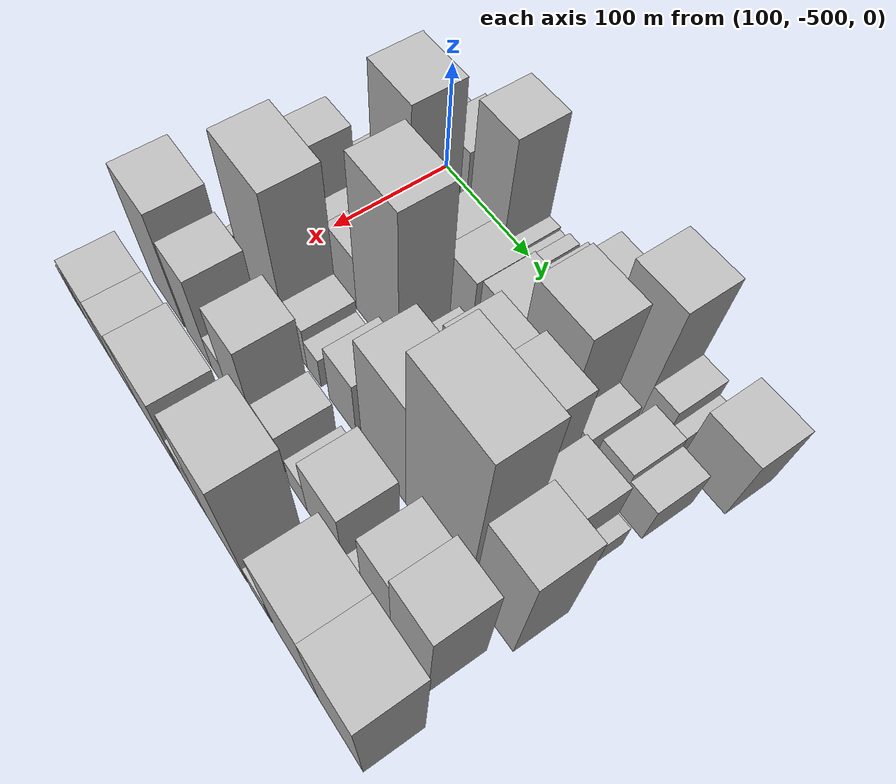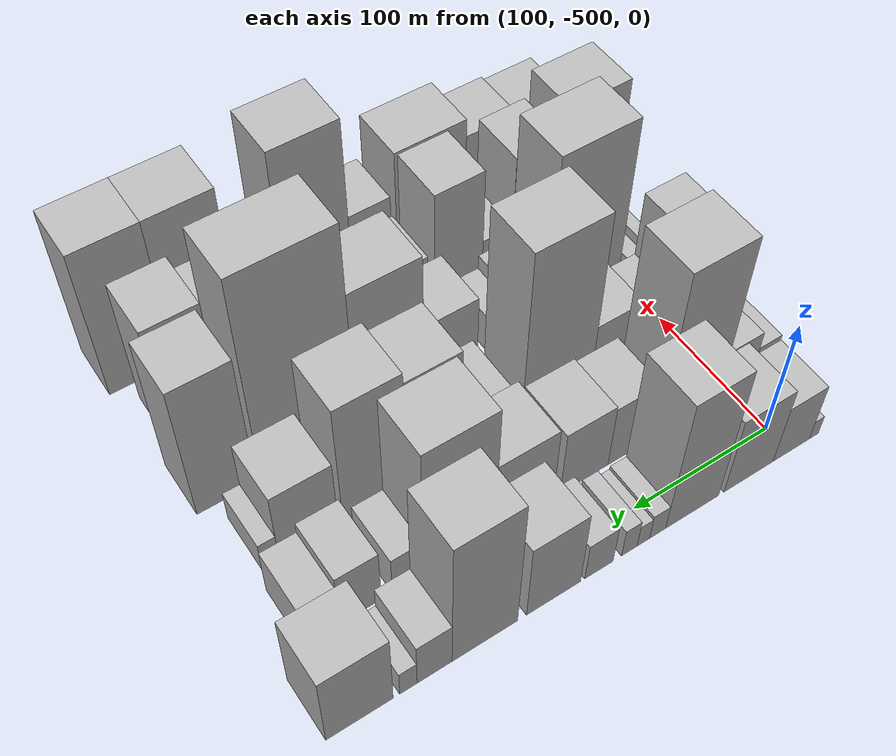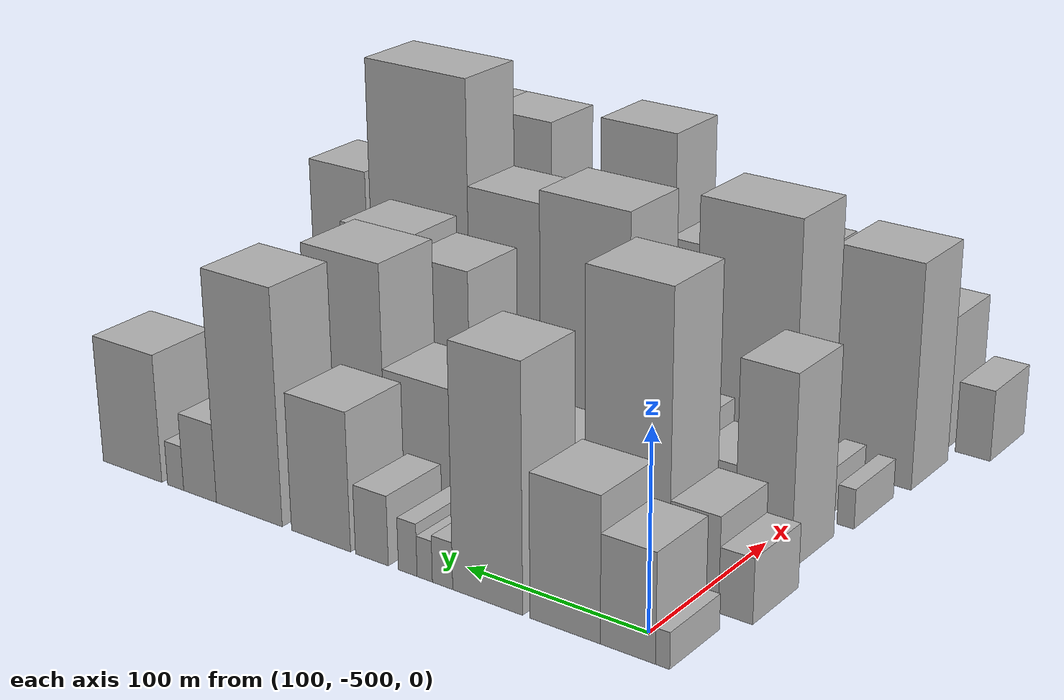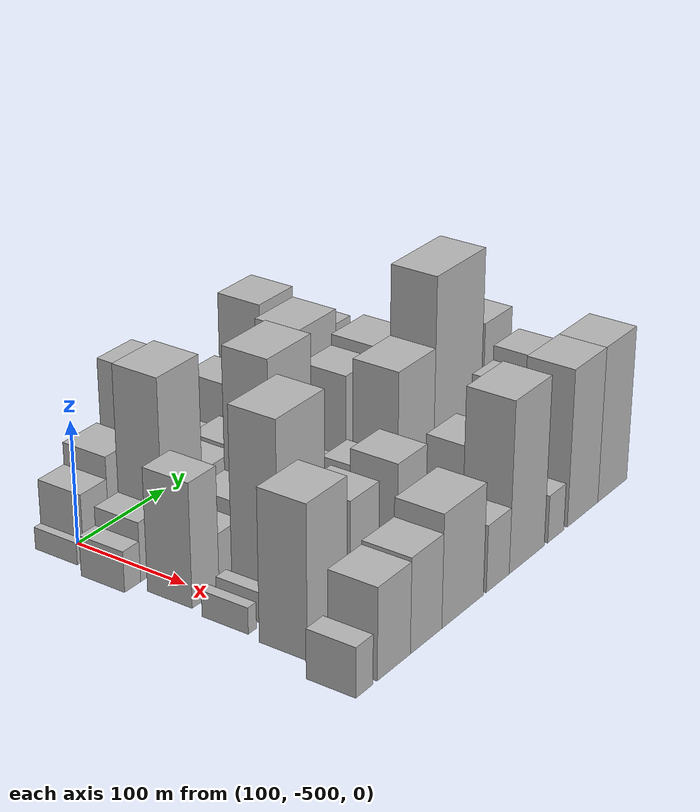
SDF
<sdf version="1.6">
 <world name="default">
  <model name="building_10">
   <static>1</static>
   <pose>100.0000 -520.1321 0 0.000000 0.000000 0.000000</pose>
   <link name="link">
    <pose>0 0 9.00 0 0 0</pose>
    <collision name="collision"><geometry><box><size>40.0000 7.2320 18.0000</size></box></geometry></collision>
    <visual name="visual">
     <cast_shadows>0</cast_shadows>
     <geometry><box><size>40.0000 7.2320 18.0000</size></box></geometry>
     <material>
      <script>
       <uri>model://HANNAS_wall/materials/scripts</uri>
       <uri>model://HANNAS_wall/materials/textures</uri>
       <name>vrc/HANNAS_wall</name>
      </script>
     </material>
    </visual>
   </link>
  </model>
  <model name="building_11">
   <static>1</static>
   <pose>100.0000 -502.2497 0 0.000000 0.000000 0.000000</pose>
   <link name="link">
    <pose>0 0 27.00 0 0 0</pose>
    <collision name="collision"><geometry><box><size>40.0000 28.5327 54.0000</size></box></geometry></collision>
    <visual name="visual">
     <cast_shadows>0</cast_shadows>
     <geometry><box><size>40.0000 28.5327 54.0000</size></box></geometry>
     <material>
      <script>
       <uri>model://HANNAS_wall/materials/scripts</uri>
       <uri>model://HANNAS_wall/materials/textures</uri>
       <name>vrc/HANNAS_wall</name>
      </script>
     </material>
    </visual>
   </link>
  </model>
  <model name="building_12">
   <static>1</static>
   <pose>100.0000 -469.1289 0 0.000000 0.000000 0.000000</pose>
   <link name="link">
    <pose>0 0 36.00 0 0 0</pose>
    <collision name="collision"><geometry><box><size>40.0000 37.7090 72.0000</size></box></geometry></collision>
    <visual name="visual">
     <cast_shadows>0</cast_shadows>
     <geometry><box><size>40.0000 37.7090 72.0000</size></box></geometry>
     <material>
      <script>
       <uri>model://HANNAS_wall/materials/scripts</uri>
       <uri>model://HANNAS_wall/materials/textures</uri>
       <name>vrc/HANNAS_wall</name>
      </script>
     </material>
    </visual>
   </link>
  </model>
  <model name="building_13">
   <static>1</static>
   <pose>100.0000 -426.5870 0 0.000000 0.000000 0.000000</pose>
   <link name="link">
    <pose>0 0 61.50 0 0 0</pose>
    <collision name="collision"><geometry><box><size>40.0000 39.3748 123.0000</size></box></geometry></collision>
    <visual name="visual">
     <cast_shadows>0</cast_shadows>
     <geometry><box><size>40.0000 39.3748 123.0000</size></box></geometry>
     <material>
      <script>
       <uri>model://HANNAS_wall/materials/scripts</uri>
       <uri>model://HANNAS_wall/materials/textures</uri>
       <name>vrc/HANNAS_wall</name>
      </script>
     </material>
    </visual>
   </link>
  </model>
  <model name="building_14">
   <static>1</static>
   <pose>100.0000 -401.0186 0 0.000000 0.000000 0.000000</pose>
   <link name="link">
    <pose>0 0 12.00 0 0 0</pose>
    <collision name="collision"><geometry><box><size>40.0000 11.7619 24.0000</size></box></geometry></collision>
    <visual name="visual">
     <cast_shadows>0</cast_shadows>
     <geometry><box><size>40.0000 11.7619 24.0000</size></box></geometry>
     <material>
      <script>
       <uri>model://HANNAS_wall/materials/scripts</uri>
       <uri>model://HANNAS_wall/materials/textures</uri>
       <name>vrc/HANNAS_wall</name>
      </script>
     </material>
    </visual>
   </link>
  </model>
  <model name="building_15">
   <static>1</static>
   <pose>100.0000 -390.6701 0 0.000000 0.000000 0.000000</pose>
   <link name="link">
    <pose>0 0 10.50 0 0 0</pose>
    <collision name="collision"><geometry><box><size>40.0000 8.9351 21.0000</size></box></geometry></collision>
    <visual name="visual">
     <cast_shadows>0</cast_shadows>
     <geometry><box><size>40.0000 8.9351 21.0000</size></box></geometry>
     <material>
      <script>
       <uri>model://HANNAS_wall/materials/scripts</uri>
       <uri>model://HANNAS_wall/materials/textures</uri>
       <name>vrc/HANNAS_wall</name>
      </script>
     </material>
    </visual>
   </link>
  </model>
  <model name="building_16">
   <static>1</static>
   <pose>100.0000 -380.6885 0 0.000000 0.000000 0.000000</pose>
   <link name="link">
    <pose>0 0 13.50 0 0 0</pose>
    <collision name="collision"><geometry><box><size>40.0000 11.0281 27.0000</size></box></geometry></collision>
    <visual name="visual">
     <cast_shadows>0</cast_shadows>
     <geometry><box><size>40.0000 11.0281 27.0000</size></box></geometry>
     <material>
      <script>
       <uri>model://HANNAS_wall/materials/scripts</uri>
       <uri>model://HANNAS_wall/materials/textures</uri>
       <name>vrc/HANNAS_wall</name>
      </script>
     </material>
    </visual>
   </link>
  </model>
  <model name="building_17">
   <static>1</static>
   <pose>100.0000 -359.2277 0 0.000000 0.000000 0.000000</pose>
   <link name="link">
    <pose>0 0 18.00 0 0 0</pose>
    <collision name="collision"><geometry><box><size>40.0000 19.8936 36.0000</size></box></geometry></collision>
    <visual name="visual">
     <cast_shadows>0</cast_shadows>
     <geometry><box><size>40.0000 19.8936 36.0000</size></box></geometry>
     <material>
      <script>
       <uri>model://HANNAS_wall/materials/scripts</uri>
       <uri>model://HANNAS_wall/materials/textures</uri>
       <name>vrc/HANNAS_wall</name>
      </script>
     </material>
    </visual>
   </link>
  </model>
  <model name="building_18">
   <static>1</static>
   <pose>100.0000 -327.8683 0 0.000000 0.000000 0.000000</pose>
   <link name="link">
    <pose>0 0 36.00 0 0 0</pose>
    <collision name="collision"><geometry><box><size>40.0000 36.8251 72.0000</size></box></geometry></collision>
    <visual name="visual">
     <cast_shadows>0</cast_shadows>
     <geometry><box><size>40.0000 36.8251 72.0000</size></box></geometry>
     <material>
      <script>
       <uri>model://HANNAS_wall/materials/scripts</uri>
       <uri>model://HANNAS_wall/materials/textures</uri>
       <name>vrc/HANNAS_wall</name>
      </script>
     </material>
    </visual>
   </link>
  </model>
  <model name="building_19">
   <static>1</static>
   <pose>100.0000 -281.9354 0 0.000000 0.000000 0.000000</pose>
   <link name="link">
    <pose>0 0 61.50 0 0 0</pose>
    <collision name="collision"><geometry><box><size>40.0000 43.0408 123.0000</size></box></geometry></collision>
    <visual name="visual">
     <cast_shadows>0</cast_shadows>
     <geometry><box><size>40.0000 43.0408 123.0000</size></box></geometry>
     <material>
      <script>
       <uri>model://HANNAS_wall/materials/scripts</uri>
       <uri>model://HANNAS_wall/materials/textures</uri>
       <name>vrc/HANNAS_wall</name>
      </script>
     </material>
    </visual>
   </link>
  </model>
  <model name="building_20">
   <static>1</static>
   <pose>100.0000 -249.3155 0 0.000000 0.000000 0.000000</pose>
   <link name="link">
    <pose>0 0 21.00 0 0 0</pose>
    <collision name="collision"><geometry><box><size>40.0000 22.1990 42.0000</size></box></geometry></collision>
    <visual name="visual">
     <cast_shadows>0</cast_shadows>
     <geometry><box><size>40.0000 22.1990 42.0000</size></box></geometry>
     <material>
      <script>
       <uri>model://HANNAS_wall/materials/scripts</uri>
       <uri>model://HANNAS_wall/materials/textures</uri>
       <name>vrc/HANNAS_wall</name>
      </script>
     </material>
    </visual>
   </link>
  </model>
  <model name="building_21">
   <static>1</static>
   <pose>100.0000 -232.7131 0 0.000000 0.000000 0.000000</pose>
   <link name="link">
    <pose>0 0 12.00 0 0 0</pose>
    <collision name="collision"><geometry><box><size>40.0000 11.0057 24.0000</size></box></geometry></collision>
    <visual name="visual">
     <cast_shadows>0</cast_shadows>
     <geometry><box><size>40.0000 11.0057 24.0000</size></box></geometry>
     <material>
      <script>
       <uri>model://HANNAS_wall/materials/scripts</uri>
       <uri>model://HANNAS_wall/materials/textures</uri>
       <name>vrc/HANNAS_wall</name>
      </script>
     </material>
    </visual>
   </link>
  </model>
  <model name="building_22">
   <static>1</static>
   <pose>100.0000 -202.5432 0 0.000000 0.000000 0.000000</pose>
   <link name="link">
    <pose>0 0 34.50 0 0 0</pose>
    <collision name="collision"><geometry><box><size>40.0000 41.3342 69.0000</size></box></geometry></collision>
    <visual name="visual">
     <cast_shadows>0</cast_shadows>
     <geometry><box><size>40.0000 41.3342 69.0000</size></box></geometry>
     <material>
      <script>
       <uri>model://HANNAS_wall/materials/scripts</uri>
       <uri>model://HANNAS_wall/materials/textures</uri>
       <name>vrc/HANNAS_wall</name>
      </script>
     </material>
    </visual>
   </link>
  </model>
  <model name="building_62">
   <static>1</static>
   <pose>152.0000 -524.5875 0 0.000000 0.000000 0.000000</pose>
   <link name="link">
    <pose>0 0 16.50 0 0 0</pose>
    <collision name="collision"><geometry><box><size>40.0000 17.6715 33.0000</size></box></geometry></collision>
    <visual name="visual">
     <cast_shadows>0</cast_shadows>
     <geometry><box><size>40.0000 17.6715 33.0000</size></box></geometry>
     <material>
      <script>
       <uri>model://HANNAS_wall/materials/scripts</uri>
       <uri>model://HANNAS_wall/materials/textures</uri>
       <name>vrc/HANNAS_wall</name>
      </script>
     </material>
    </visual>
   </link>
  </model>
  <model name="building_63">
   <static>1</static>
   <pose>152.0000 -502.6047 0 0.000000 0.000000 0.000000</pose>
   <link name="link">
    <pose>0 0 24.00 0 0 0</pose>
    <collision name="collision"><geometry><box><size>40.0000 26.2942 48.0000</size></box></geometry></collision>
    <visual name="visual">
     <cast_shadows>0</cast_shadows>
     <geometry><box><size>40.0000 26.2942 48.0000</size></box></geometry>
     <material>
      <script>
       <uri>model://HANNAS_wall/materials/scripts</uri>
       <uri>model://HANNAS_wall/materials/textures</uri>
       <name>vrc/HANNAS_wall</name>
      </script>
     </material>
    </visual>
   </link>
  </model>
  <model name="building_64">
   <static>1</static>
   <pose>152.0000 -466.3434 0 0.000000 0.000000 0.000000</pose>
   <link name="link">
    <pose>0 0 75.00 0 0 0</pose>
    <collision name="collision"><geometry><box><size>40.0000 46.2285 150.0000</size></box></geometry></collision>
    <visual name="visual">
     <cast_shadows>0</cast_shadows>
     <geometry><box><size>40.0000 46.2285 150.0000</size></box></geometry>
     <material>
      <script>
       <uri>model://HANNAS_wall/materials/scripts</uri>
       <uri>model://HANNAS_wall/materials/textures</uri>
       <name>vrc/HANNAS_wall</name>
      </script>
     </material>
    </visual>
   </link>
  </model>
  <model name="building_65">
   <static>1</static>
   <pose>152.0000 -421.4302 0 0.000000 0.000000 0.000000</pose>
   <link name="link">
    <pose>0 0 28.50 0 0 0</pose>
    <collision name="collision"><geometry><box><size>40.0000 31.5978 57.0000</size></box></geometry></collision>
    <visual name="visual">
     <cast_shadows>0</cast_shadows>
     <geometry><box><size>40.0000 31.5978 57.0000</size></box></geometry>
     <material>
      <script>
       <uri>model://HANNAS_wall/materials/scripts</uri>
       <uri>model://HANNAS_wall/materials/textures</uri>
       <name>vrc/HANNAS_wall</name>
      </script>
     </material>
    </visual>
   </link>
  </model>
  <model name="building_66">
   <static>1</static>
   <pose>152.0000 -388.2753 0 0.000000 0.000000 0.000000</pose>
   <link name="link">
    <pose>0 0 30.00 0 0 0</pose>
    <collision name="collision"><geometry><box><size>40.0000 34.7120 60.0000</size></box></geometry></collision>
    <visual name="visual">
     <cast_shadows>0</cast_shadows>
     <geometry><box><size>40.0000 34.7120 60.0000</size></box></geometry>
     <material>
      <script>
       <uri>model://HANNAS_wall/materials/scripts</uri>
       <uri>model://HANNAS_wall/materials/textures</uri>
       <name>vrc/HANNAS_wall</name>
      </script>
     </material>
    </visual>
   </link>
  </model>
  <model name="building_67">
   <static>1</static>
   <pose>152.0000 -345.3251 0 0.000000 0.000000 0.000000</pose>
   <link name="link">
    <pose>0 0 34.50 0 0 0</pose>
    <collision name="collision"><geometry><box><size>40.0000 41.1885 69.0000</size></box></geometry></collision>
    <visual name="visual">
     <cast_shadows>0</cast_shadows>
     <geometry><box><size>40.0000 41.1885 69.0000</size></box></geometry>
     <material>
      <script>
       <uri>model://HANNAS_wall/materials/scripts</uri>
       <uri>model://HANNAS_wall/materials/textures</uri>
       <name>vrc/HANNAS_wall</name>
      </script>
     </material>
    </visual>
   </link>
  </model>
  <model name="building_68">
   <static>1</static>
   <pose>152.0000 -300.4010 0 0.000000 0.000000 0.000000</pose>
   <link name="link">
    <pose>0 0 61.50 0 0 0</pose>
    <collision name="collision"><geometry><box><size>40.0000 48.6596 123.0000</size></box></geometry></collision>
    <visual name="visual">
     <cast_shadows>0</cast_shadows>
     <geometry><box><size>40.0000 48.6596 123.0000</size></box></geometry>
     <material>
      <script>
       <uri>model://HANNAS_wall/materials/scripts</uri>
       <uri>model://HANNAS_wall/materials/textures</uri>
       <name>vrc/HANNAS_wall</name>
      </script>
     </material>
    </visual>
   </link>
  </model>
  <model name="building_69">
   <static>1</static>
   <pose>152.0000 -265.8453 0 0.000000 0.000000 0.000000</pose>
   <link name="link">
    <pose>0 0 18.00 0 0 0</pose>
    <collision name="collision"><geometry><box><size>40.0000 20.4519 36.0000</size></box></geometry></collision>
    <visual name="visual">
     <cast_shadows>0</cast_shadows>
     <geometry><box><size>40.0000 20.4519 36.0000</size></box></geometry>
     <material>
      <script>
       <uri>model://HANNAS_wall/materials/scripts</uri>
       <uri>model://HANNAS_wall/materials/textures</uri>
       <name>vrc/HANNAS_wall</name>
      </script>
     </material>
    </visual>
   </link>
  </model>
  <model name="building_70">
   <static>1</static>
   <pose>152.0000 -235.1128 0 0.000000 0.000000 0.000000</pose>
   <link name="link">
    <pose>0 0 25.50 0 0 0</pose>
    <collision name="collision"><geometry><box><size>40.0000 27.0131 51.0000</size></box></geometry></collision>
    <visual name="visual">
     <cast_shadows>0</cast_shadows>
     <geometry><box><size>40.0000 27.0131 51.0000</size></box></geometry>
     <material>
      <script>
       <uri>model://HANNAS_wall/materials/scripts</uri>
       <uri>model://HANNAS_wall/materials/textures</uri>
       <name>vrc/HANNAS_wall</name>
      </script>
     </material>
    </visual>
   </link>
  </model>
  <model name="building_71">
   <static>1</static>
   <pose>152.0000 -210.0470 0 0.000000 0.000000 0.000000</pose>
   <link name="link">
    <pose>0 0 21.00 0 0 0</pose>
    <collision name="collision"><geometry><box><size>40.0000 23.1183 42.0000</size></box></geometry></collision>
    <visual name="visual">
     <cast_shadows>0</cast_shadows>
     <geometry><box><size>40.0000 23.1183 42.0000</size></box></geometry>
     <material>
      <script>
       <uri>model://HANNAS_wall/materials/scripts</uri>
       <uri>model://HANNAS_wall/materials/textures</uri>
       <name>vrc/HANNAS_wall</name>
      </script>
     </material>
    </visual>
   </link>
  </model>
  <model name="building_116">
   <static>1</static>
   <pose>204.0000 -507.4795 0 0.000000 0.000000 0.000000</pose>
   <link name="link">
    <pose>0 0 49.50 0 0 0</pose>
    <collision name="collision"><geometry><box><size>40.0000 30.4608 99.0000</size></box></geometry></collision>
    <visual name="visual">
     <cast_shadows>0</cast_shadows>
     <geometry><box><size>40.0000 30.4608 99.0000</size></box></geometry>
     <material>
      <script>
       <uri>model://HANNAS_wall/materials/scripts</uri>
       <uri>model://HANNAS_wall/materials/textures</uri>
       <name>vrc/HANNAS_wall</name>
      </script>
     </material>
    </visual>
   </link>
  </model>
  <model name="building_117">
   <static>1</static>
   <pose>204.0000 -479.2169 0 0.000000 0.000000 0.000000</pose>
   <link name="link">
    <pose>0 0 22.50 0 0 0</pose>
    <collision name="collision"><geometry><box><size>40.0000 26.0646 45.0000</size></box></geometry></collision>
    <visual name="visual">
     <cast_shadows>0</cast_shadows>
     <geometry><box><size>40.0000 26.0646 45.0000</size></box></geometry>
     <material>
      <script>
       <uri>model://HANNAS_wall/materials/scripts</uri>
       <uri>model://HANNAS_wall/materials/textures</uri>
       <name>vrc/HANNAS_wall</name>
      </script>
     </material>
    </visual>
   </link>
  </model>
  <model name="building_118">
   <static>1</static>
   <pose>204.0000 -449.1512 0 0.000000 0.000000 0.000000</pose>
   <link name="link">
    <pose>0 0 28.50 0 0 0</pose>
    <collision name="collision"><geometry><box><size>40.0000 34.0669 57.0000</size></box></geometry></collision>
    <visual name="visual">
     <cast_shadows>0</cast_shadows>
     <geometry><box><size>40.0000 34.0669 57.0000</size></box></geometry>
     <material>
      <script>
       <uri>model://HANNAS_wall/materials/scripts</uri>
       <uri>model://HANNAS_wall/materials/textures</uri>
       <name>vrc/HANNAS_wall</name>
      </script>
     </material>
    </visual>
   </link>
  </model>
  <model name="building_119">
   <static>1</static>
   <pose>204.0000 -406.2856 0 0.000000 0.000000 0.000000</pose>
   <link name="link">
    <pose>0 0 78.00 0 0 0</pose>
    <collision name="collision"><geometry><box><size>40.0000 51.6643 156.0000</size></box></geometry></collision>
    <visual name="visual">
     <cast_shadows>0</cast_shadows>
     <geometry><box><size>40.0000 51.6643 156.0000</size></box></geometry>
     <material>
      <script>
       <uri>model://HANNAS_wall/materials/scripts</uri>
       <uri>model://HANNAS_wall/materials/textures</uri>
       <name>vrc/HANNAS_wall</name>
      </script>
     </material>
    </visual>
   </link>
  </model>
  <model name="building_120">
   <static>1</static>
   <pose>204.0000 -359.1246 0 0.000000 0.000000 0.000000</pose>
   <link name="link">
    <pose>0 0 22.50 0 0 0</pose>
    <collision name="collision"><geometry><box><size>40.0000 24.6578 45.0000</size></box></geometry></collision>
    <visual name="visual">
     <cast_shadows>0</cast_shadows>
     <geometry><box><size>40.0000 24.6578 45.0000</size></box></geometry>
     <material>
      <script>
       <uri>model://HANNAS_wall/materials/scripts</uri>
       <uri>model://HANNAS_wall/materials/textures</uri>
       <name>vrc/HANNAS_wall</name>
      </script>
     </material>
    </visual>
   </link>
  </model>
  <model name="building_121">
   <static>1</static>
   <pose>204.0000 -317.7752 0 0.000000 0.000000 0.000000</pose>
   <link name="link">
    <pose>0 0 52.50 0 0 0</pose>
    <collision name="collision"><geometry><box><size>40.0000 38.0410 105.0000</size></box></geometry></collision>
    <visual name="visual">
     <cast_shadows>0</cast_shadows>
     <geometry><box><size>40.0000 38.0410 105.0000</size></box></geometry>
     <material>
      <script>
       <uri>model://HANNAS_wall/materials/scripts</uri>
       <uri>model://HANNAS_wall/materials/textures</uri>
       <name>vrc/HANNAS_wall</name>
      </script>
     </material>
    </visual>
   </link>
  </model>
  <model name="building_122">
   <static>1</static>
   <pose>204.0000 -277.1395 0 0.000000 0.000000 0.000000</pose>
   <link name="link">
    <pose>0 0 57.00 0 0 0</pose>
    <collision name="collision"><geometry><box><size>40.0000 43.2304 114.0000</size></box></geometry></collision>
    <visual name="visual">
     <cast_shadows>0</cast_shadows>
     <geometry><box><size>40.0000 43.2304 114.0000</size></box></geometry>
     <material>
      <script>
       <uri>model://HANNAS_wall/materials/scripts</uri>
       <uri>model://HANNAS_wall/materials/textures</uri>
       <name>vrc/HANNAS_wall</name>
      </script>
     </material>
    </visual>
   </link>
  </model>
  <model name="building_123">
   <static>1</static>
   <pose>204.0000 -233.1092 0 0.000000 0.000000 0.000000</pose>
   <link name="link">
    <pose>0 0 33.00 0 0 0</pose>
    <collision name="collision"><geometry><box><size>40.0000 38.8304 66.0000</size></box></geometry></collision>
    <visual name="visual">
     <cast_shadows>0</cast_shadows>
     <geometry><box><size>40.0000 38.8304 66.0000</size></box></geometry>
     <material>
      <script>
       <uri>model://HANNAS_wall/materials/scripts</uri>
       <uri>model://HANNAS_wall/materials/textures</uri>
       <name>vrc/HANNAS_wall</name>
      </script>
     </material>
    </visual>
   </link>
  </model>
  <model name="building_124">
   <static>1</static>
   <pose>204.0000 -208.1800 0 0.000000 0.000000 0.000000</pose>
   <link name="link">
    <pose>0 0 13.50 0 0 0</pose>
    <collision name="collision"><geometry><box><size>40.0000 11.0280 27.0000</size></box></geometry></collision>
    <visual name="visual">
     <cast_shadows>0</cast_shadows>
     <geometry><box><size>40.0000 11.0280 27.0000</size></box></geometry>
     <material>
      <script>
       <uri>model://HANNAS_wall/materials/scripts</uri>
       <uri>model://HANNAS_wall/materials/textures</uri>
       <name>vrc/HANNAS_wall</name>
      </script>
     </material>
    </visual>
   </link>
  </model>
  <model name="building_162">
   <static>1</static>
   <pose>256.0000 -522.3831 0 0.000000 0.000000 0.000000</pose>
   <link name="link">
    <pose>0 0 10.50 0 0 0</pose>
    <collision name="collision"><geometry><box><size>40.0000 9.2890 21.0000</size></box></geometry></collision>
    <visual name="visual">
     <cast_shadows>0</cast_shadows>
     <geometry><box><size>40.0000 9.2890 21.0000</size></box></geometry>
     <material>
      <script>
       <uri>model://HANNAS_wall/materials/scripts</uri>
       <uri>model://HANNAS_wall/materials/textures</uri>
       <name>vrc/HANNAS_wall</name>
      </script>
     </material>
    </visual>
   </link>
  </model>
  <model name="building_163">
   <static>1</static>
   <pose>256.0000 -504.7860 0 0.000000 0.000000 0.000000</pose>
   <link name="link">
    <pose>0 0 12.00 0 0 0</pose>
    <collision name="collision"><geometry><box><size>40.0000 11.9053 24.0000</size></box></geometry></collision>
    <visual name="visual">
     <cast_shadows>0</cast_shadows>
     <geometry><box><size>40.0000 11.9053 24.0000</size></box></geometry>
     <material>
      <script>
       <uri>model://HANNAS_wall/materials/scripts</uri>
       <uri>model://HANNAS_wall/materials/textures</uri>
       <name>vrc/HANNAS_wall</name>
      </script>
     </material>
    </visual>
   </link>
  </model>
  <model name="building_164">
   <static>1</static>
   <pose>256.0000 -464.8384 0 0.000000 0.000000 0.000000</pose>
   <link name="link">
    <pose>0 0 75.00 0 0 0</pose>
    <collision name="collision"><geometry><box><size>40.0000 55.9898 150.0000</size></box></geometry></collision>
    <visual name="visual">
     <cast_shadows>0</cast_shadows>
     <geometry><box><size>40.0000 55.9898 150.0000</size></box></geometry>
     <material>
      <script>
       <uri>model://HANNAS_wall/materials/scripts</uri>
       <uri>model://HANNAS_wall/materials/textures</uri>
       <name>vrc/HANNAS_wall</name>
      </script>
     </material>
    </visual>
   </link>
  </model>
  <model name="building_165">
   <static>1</static>
   <pose>256.0000 -424.0616 0 0.000000 0.000000 0.000000</pose>
   <link name="link">
    <pose>0 0 22.50 0 0 0</pose>
    <collision name="collision"><geometry><box><size>40.0000 25.5638 45.0000</size></box></geometry></collision>
    <visual name="visual">
     <cast_shadows>0</cast_shadows>
     <geometry><box><size>40.0000 25.5638 45.0000</size></box></geometry>
     <material>
      <script>
       <uri>model://HANNAS_wall/materials/scripts</uri>
       <uri>model://HANNAS_wall/materials/textures</uri>
       <name>vrc/HANNAS_wall</name>
      </script>
     </material>
    </visual>
   </link>
  </model>
  <model name="building_166">
   <static>1</static>
   <pose>256.0000 -402.5750 0 0.000000 0.000000 0.000000</pose>
   <link name="link">
    <pose>0 0 16.50 0 0 0</pose>
    <collision name="collision"><geometry><box><size>40.0000 17.4094 33.0000</size></box></geometry></collision>
    <visual name="visual">
     <cast_shadows>0</cast_shadows>
     <geometry><box><size>40.0000 17.4094 33.0000</size></box></geometry>
     <material>
      <script>
       <uri>model://HANNAS_wall/materials/scripts</uri>
       <uri>model://HANNAS_wall/materials/textures</uri>
       <name>vrc/HANNAS_wall</name>
      </script>
     </material>
    </visual>
   </link>
  </model>
  <model name="building_167">
   <static>1</static>
   <pose>256.0000 -368.0214 0 0.000000 0.000000 0.000000</pose>
   <link name="link">
    <pose>0 0 31.50 0 0 0</pose>
    <collision name="collision"><geometry><box><size>40.0000 31.6977 63.0000</size></box></geometry></collision>
    <visual name="visual">
     <cast_shadows>0</cast_shadows>
     <geometry><box><size>40.0000 31.6977 63.0000</size></box></geometry>
     <material>
      <script>
       <uri>model://HANNAS_wall/materials/scripts</uri>
       <uri>model://HANNAS_wall/materials/textures</uri>
       <name>vrc/HANNAS_wall</name>
      </script>
     </material>
    </visual>
   </link>
  </model>
  <model name="building_168">
   <static>1</static>
   <pose>256.0000 -320.9266 0 0.000000 0.000000 0.000000</pose>
   <link name="link">
    <pose>0 0 63.00 0 0 0</pose>
    <collision name="collision"><geometry><box><size>40.0000 48.4920 126.0000</size></box></geometry></collision>
    <visual name="visual">
     <cast_shadows>0</cast_shadows>
     <geometry><box><size>40.0000 48.4920 126.0000</size></box></geometry>
     <material>
      <script>
       <uri>model://HANNAS_wall/materials/scripts</uri>
       <uri>model://HANNAS_wall/materials/textures</uri>
       <name>vrc/HANNAS_wall</name>
      </script>
     </material>
    </visual>
   </link>
  </model>
  <model name="building_169">
   <static>1</static>
   <pose>256.0000 -263.8178 0 0.000000 0.000000 0.000000</pose>
   <link name="link">
    <pose>0 0 91.50 0 0 0</pose>
    <collision name="collision"><geometry><box><size>40.0000 65.7257 183.0000</size></box></geometry></collision>
    <visual name="visual">
     <cast_shadows>0</cast_shadows>
     <geometry><box><size>40.0000 65.7257 183.0000</size></box></geometry>
     <material>
      <script>
       <uri>model://HANNAS_wall/materials/scripts</uri>
       <uri>model://HANNAS_wall/materials/textures</uri>
       <name>vrc/HANNAS_wall</name>
      </script>
     </material>
    </visual>
   </link>
  </model>
  <model name="building_170">
   <static>1</static>
   <pose>256.0000 -208.4702 0 0.000000 0.000000 0.000000</pose>
   <link name="link">
    <pose>0 0 60.00 0 0 0</pose>
    <collision name="collision"><geometry><box><size>40.0000 38.9695 120.0000</size></box></geometry></collision>
    <visual name="visual">
     <cast_shadows>0</cast_shadows>
     <geometry><box><size>40.0000 38.9695 120.0000</size></box></geometry>
     <material>
      <script>
       <uri>model://HANNAS_wall/materials/scripts</uri>
       <uri>model://HANNAS_wall/materials/textures</uri>
       <name>vrc/HANNAS_wall</name>
      </script>
     </material>
    </visual>
   </link>
  </model>
  <model name="building_210">
   <static>1</static>
   <pose>308.0000 -507.4162 0 0.000000 0.000000 0.000000</pose>
   <link name="link">
    <pose>0 0 60.00 0 0 0</pose>
    <collision name="collision"><geometry><box><size>40.0000 46.2712 120.0000</size></box></geometry></collision>
    <visual name="visual">
     <cast_shadows>0</cast_shadows>
     <geometry><box><size>40.0000 46.2712 120.0000</size></box></geometry>
     <material>
      <script>
       <uri>model://HANNAS_wall/materials/scripts</uri>
       <uri>model://HANNAS_wall/materials/textures</uri>
       <name>vrc/HANNAS_wall</name>
      </script>
     </material>
    </visual>
   </link>
  </model>
  <model name="building_211">
   <static>1</static>
   <pose>308.0000 -463.1676 0 0.000000 0.000000 0.000000</pose>
   <link name="link">
    <pose>0 0 49.50 0 0 0</pose>
    <collision name="collision"><geometry><box><size>40.0000 34.2258 99.0000</size></box></geometry></collision>
    <visual name="visual">
     <cast_shadows>0</cast_shadows>
     <geometry><box><size>40.0000 34.2258 99.0000</size></box></geometry>
     <material>
      <script>
       <uri>model://HANNAS_wall/materials/scripts</uri>
       <uri>model://HANNAS_wall/materials/textures</uri>
       <name>vrc/HANNAS_wall</name>
      </script>
     </material>
    </visual>
   </link>
  </model>
  <model name="building_212">
   <static>1</static>
   <pose>308.0000 -434.6651 0 0.000000 0.000000 0.000000</pose>
   <link name="link">
    <pose>0 0 19.50 0 0 0</pose>
    <collision name="collision"><geometry><box><size>40.0000 22.7791 39.0000</size></box></geometry></collision>
    <visual name="visual">
     <cast_shadows>0</cast_shadows>
     <geometry><box><size>40.0000 22.7791 39.0000</size></box></geometry>
     <material>
      <script>
       <uri>model://HANNAS_wall/materials/scripts</uri>
       <uri>model://HANNAS_wall/materials/textures</uri>
       <name>vrc/HANNAS_wall</name>
      </script>
     </material>
    </visual>
   </link>
  </model>
  <model name="building_213">
   <static>1</static>
   <pose>308.0000 -405.1629 0 0.000000 0.000000 0.000000</pose>
   <link name="link">
    <pose>0 0 51.00 0 0 0</pose>
    <collision name="collision"><geometry><box><size>40.0000 36.2253 102.0000</size></box></geometry></collision>
    <visual name="visual">
     <cast_shadows>0</cast_shadows>
     <geometry><box><size>40.0000 36.2253 102.0000</size></box></geometry>
     <material>
      <script>
       <uri>model://HANNAS_wall/materials/scripts</uri>
       <uri>model://HANNAS_wall/materials/textures</uri>
       <name>vrc/HANNAS_wall</name>
      </script>
     </material>
    </visual>
   </link>
  </model>
  <model name="building_214">
   <static>1</static>
   <pose>308.0000 -368.5347 0 0.000000 0.000000 0.000000</pose>
   <link name="link">
    <pose>0 0 25.50 0 0 0</pose>
    <collision name="collision"><geometry><box><size>40.0000 27.0311 51.0000</size></box></geometry></collision>
    <visual name="visual">
     <cast_shadows>0</cast_shadows>
     <geometry><box><size>40.0000 27.0311 51.0000</size></box></geometry>
     <material>
      <script>
       <uri>model://HANNAS_wall/materials/scripts</uri>
       <uri>model://HANNAS_wall/materials/textures</uri>
       <name>vrc/HANNAS_wall</name>
      </script>
     </material>
    </visual>
   </link>
  </model>
  <model name="building_215">
   <static>1</static>
   <pose>308.0000 -336.4729 0 0.000000 0.000000 0.000000</pose>
   <link name="link">
    <pose>0 0 18.00 0 0 0</pose>
    <collision name="collision"><geometry><box><size>40.0000 21.0926 36.0000</size></box></geometry></collision>
    <visual name="visual">
     <cast_shadows>0</cast_shadows>
     <geometry><box><size>40.0000 21.0926 36.0000</size></box></geometry>
     <material>
      <script>
       <uri>model://HANNAS_wall/materials/scripts</uri>
       <uri>model://HANNAS_wall/materials/textures</uri>
       <name>vrc/HANNAS_wall</name>
      </script>
     </material>
    </visual>
   </link>
  </model>
  <model name="building_216">
   <static>1</static>
   <pose>308.0000 -305.6387 0 0.000000 0.000000 0.000000</pose>
   <link name="link">
    <pose>0 0 36.00 0 0 0</pose>
    <collision name="collision"><geometry><box><size>40.0000 40.5757 72.0000</size></box></geometry></collision>
    <visual name="visual">
     <cast_shadows>0</cast_shadows>
     <geometry><box><size>40.0000 40.5757 72.0000</size></box></geometry>
     <material>
      <script>
       <uri>model://HANNAS_wall/materials/scripts</uri>
       <uri>model://HANNAS_wall/materials/textures</uri>
       <name>vrc/HANNAS_wall</name>
      </script>
     </material>
    </visual>
   </link>
  </model>
  <model name="building_217">
   <static>1</static>
   <pose>308.0000 -272.3273 0 0.000000 0.000000 0.000000</pose>
   <link name="link">
    <pose>0 0 15.00 0 0 0</pose>
    <collision name="collision"><geometry><box><size>40.0000 16.0472 30.0000</size></box></geometry></collision>
    <visual name="visual">
     <cast_shadows>0</cast_shadows>
     <geometry><box><size>40.0000 16.0472 30.0000</size></box></geometry>
     <material>
      <script>
       <uri>model://HANNAS_wall/materials/scripts</uri>
       <uri>model://HANNAS_wall/materials/textures</uri>
       <name>vrc/HANNAS_wall</name>
      </script>
     </material>
    </visual>
   </link>
  </model>
  <model name="building_218">
   <static>1</static>
   <pose>308.0000 -249.5408 0 0.000000 0.000000 0.000000</pose>
   <link name="link">
    <pose>0 0 48.00 0 0 0</pose>
    <collision name="collision"><geometry><box><size>40.0000 29.5258 96.0000</size></box></geometry></collision>
    <visual name="visual">
     <cast_shadows>0</cast_shadows>
     <geometry><box><size>40.0000 29.5258 96.0000</size></box></geometry>
     <material>
      <script>
       <uri>model://HANNAS_wall/materials/scripts</uri>
       <uri>model://HANNAS_wall/materials/textures</uri>
       <name>vrc/HANNAS_wall</name>
      </script>
     </material>
    </visual>
   </link>
  </model>
  <model name="building_219">
   <static>1</static>
   <pose>308.0000 -216.4071 0 0.000000 0.000000 0.000000</pose>
   <link name="link">
    <pose>0 0 54.00 0 0 0</pose>
    <collision name="collision"><geometry><box><size>40.0000 36.7417 108.0000</size></box></geometry></collision>
    <visual name="visual">
     <cast_shadows>0</cast_shadows>
     <geometry><box><size>40.0000 36.7417 108.0000</size></box></geometry>
     <material>
      <script>
       <uri>model://HANNAS_wall/materials/scripts</uri>
       <uri>model://HANNAS_wall/materials/textures</uri>
       <name>vrc/HANNAS_wall</name>
      </script>
     </material>
    </visual>
   </link>
  </model>
  <model name="building_258">
   <static>1</static>
   <pose>360.0000 -538.6610 0 0.000000 0.000000 0.000000</pose>
   <link name="link">
    <pose>0 0 19.50 0 0 0</pose>
    <collision name="collision"><geometry><box><size>40.0000 19.5773 39.0000</size></box></geometry></collision>
    <visual name="visual">
     <cast_shadows>0</cast_shadows>
     <geometry><box><size>40.0000 19.5773 39.0000</size></box></geometry>
     <material>
      <script>
       <uri>model://HANNAS_wall/materials/scripts</uri>
       <uri>model://HANNAS_wall/materials/textures</uri>
       <name>vrc/HANNAS_wall</name>
      </script>
     </material>
    </visual>
   </link>
  </model>
  <model name="building_259">
   <static>1</static>
   <pose>360.0000 -504.1261 0 0.000000 0.000000 0.000000</pose>
   <link name="link">
    <pose>0 0 36.00 0 0 0</pose>
    <collision name="collision"><geometry><box><size>40.0000 39.4926 72.0000</size></box></geometry></collision>
    <visual name="visual">
     <cast_shadows>0</cast_shadows>
     <geometry><box><size>40.0000 39.4926 72.0000</size></box></geometry>
     <material>
      <script>
       <uri>model://HANNAS_wall/materials/scripts</uri>
       <uri>model://HANNAS_wall/materials/textures</uri>
       <name>vrc/HANNAS_wall</name>
      </script>
     </material>
    </visual>
   </link>
  </model>
  <model name="building_260">
   <static>1</static>
   <pose>360.0000 -464.9031 0 0.000000 0.000000 0.000000</pose>
   <link name="link">
    <pose>0 0 37.50 0 0 0</pose>
    <collision name="collision"><geometry><box><size>40.0000 38.9532 75.0000</size></box></geometry></collision>
    <visual name="visual">
     <cast_shadows>0</cast_shadows>
     <geometry><box><size>40.0000 38.9532 75.0000</size></box></geometry>
     <material>
      <script>
       <uri>model://HANNAS_wall/materials/scripts</uri>
       <uri>model://HANNAS_wall/materials/textures</uri>
       <name>vrc/HANNAS_wall</name>
      </script>
     </material>
    </visual>
   </link>
  </model>
  <model name="building_261">
   <static>1</static>
   <pose>360.0000 -418.6354 0 0.000000 0.000000 0.000000</pose>
   <link name="link">
    <pose>0 0 45.00 0 0 0</pose>
    <collision name="collision"><geometry><box><size>40.0000 53.5822 90.0000</size></box></geometry></collision>
    <visual name="visual">
     <cast_shadows>0</cast_shadows>
     <geometry><box><size>40.0000 53.5822 90.0000</size></box></geometry>
     <material>
      <script>
       <uri>model://HANNAS_wall/materials/scripts</uri>
       <uri>model://HANNAS_wall/materials/textures</uri>
       <name>vrc/HANNAS_wall</name>
      </script>
     </material>
    </visual>
   </link>
  </model>
  <model name="building_262">
   <static>1</static>
   <pose>360.0000 -372.4085 0 0.000000 0.000000 0.000000</pose>
   <link name="link">
    <pose>0 0 27.00 0 0 0</pose>
    <collision name="collision"><geometry><box><size>40.0000 30.8716 54.0000</size></box></geometry></collision>
    <visual name="visual">
     <cast_shadows>0</cast_shadows>
     <geometry><box><size>40.0000 30.8716 54.0000</size></box></geometry>
     <material>
      <script>
       <uri>model://HANNAS_wall/materials/scripts</uri>
       <uri>model://HANNAS_wall/materials/textures</uri>
       <name>vrc/HANNAS_wall</name>
      </script>
     </material>
    </visual>
   </link>
  </model>
  <model name="building_263">
   <static>1</static>
   <pose>360.0000 -332.4504 0 0.000000 0.000000 0.000000</pose>
   <link name="link">
    <pose>0 0 69.00 0 0 0</pose>
    <collision name="collision"><geometry><box><size>40.0000 49.0445 138.0000</size></box></geometry></collision>
    <visual name="visual">
     <cast_shadows>0</cast_shadows>
     <geometry><box><size>40.0000 49.0445 138.0000</size></box></geometry>
     <material>
      <script>
       <uri>model://HANNAS_wall/materials/scripts</uri>
       <uri>model://HANNAS_wall/materials/textures</uri>
       <name>vrc/HANNAS_wall</name>
      </script>
     </material>
    </visual>
   </link>
  </model>
  <model name="building_264">
   <static>1</static>
   <pose>360.0000 -291.2583 0 0.000000 0.000000 0.000000</pose>
   <link name="link">
    <pose>0 0 19.50 0 0 0</pose>
    <collision name="collision"><geometry><box><size>40.0000 23.3398 39.0000</size></box></geometry></collision>
    <visual name="visual">
     <cast_shadows>0</cast_shadows>
     <geometry><box><size>40.0000 23.3398 39.0000</size></box></geometry>
     <material>
      <script>
       <uri>model://HANNAS_wall/materials/scripts</uri>
       <uri>model://HANNAS_wall/materials/textures</uri>
       <name>vrc/HANNAS_wall</name>
      </script>
     </material>
    </visual>
   </link>
  </model>
  <model name="building_265">
   <static>1</static>
   <pose>360.0000 -251.6954 0 0.000000 0.000000 0.000000</pose>
   <link name="link">
    <pose>0 0 64.50 0 0 0</pose>
    <collision name="collision"><geometry><box><size>40.0000 45.7860 129.0000</size></box></geometry></collision>
    <visual name="visual">
     <cast_shadows>0</cast_shadows>
     <geometry><box><size>40.0000 45.7860 129.0000</size></box></geometry>
     <material>
      <script>
       <uri>model://HANNAS_wall/materials/scripts</uri>
       <uri>model://HANNAS_wall/materials/textures</uri>
       <name>vrc/HANNAS_wall</name>
      </script>
     </material>
    </visual>
   </link>
  </model>
  <model name="building_266">
   <static>1</static>
   <pose>360.0000 -206.3162 0 0.000000 0.000000 0.000000</pose>
   <link name="link">
    <pose>0 0 64.50 0 0 0</pose>
    <collision name="collision"><geometry><box><size>40.0000 44.9724 129.0000</size></box></geometry></collision>
    <visual name="visual">
     <cast_shadows>0</cast_shadows>
     <geometry><box><size>40.0000 44.9724 129.0000</size></box></geometry>
     <material>
      <script>
       <uri>model://HANNAS_wall/materials/scripts</uri>
       <uri>model://HANNAS_wall/materials/textures</uri>
       <name>vrc/HANNAS_wall</name>
      </script>
     </material>
    </visual>
   </link>
  </model>
 </world>
</sdf>
